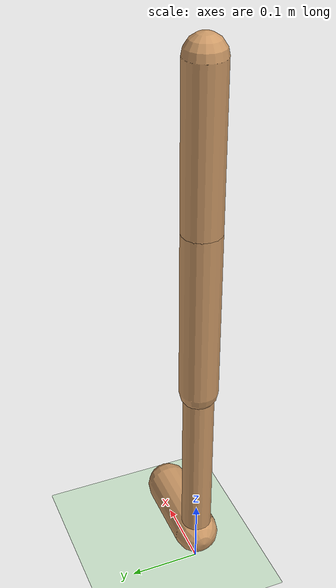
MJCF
<mujoco model="walker2d">
  <compiler angle="degree" inertiafromgeom="true" />
  <default>
    <joint armature="0.01" damping=".1" limited="true" />
    <geom conaffinity="0" condim="3" contype="1" density="1000" friction=".7 .1 .1" rgba="0.8 0.6 .4 1" />
  </default>
  <option integrator="RK4" timestep="0.002" />
  <worldbody>
    <light cutoff="100" diffuse="1 1 1" dir="-0 0 -1.3" directional="true" exponent="1" pos="0 0 1.3" specular=".1 .1 .1" />
    <geom conaffinity="1" condim="3" name="floor" pos="0 0 0" rgba="0.8 0.9 0.8 1" size="40 40 40" type="plane" material="MatPlane" />
    <body name="torso" pos="0 0 0.665">
      <camera name="track" mode="trackcom" pos="0 -3 -0.25" xyaxes="1 0 0 0 0 1" />
      <joint armature="0" axis="1 0 0" damping="0" limited="false" name="rootx" pos="0 0 -0.665" stiffness="0" type="slide" />
      <joint armature="0" axis="0 0 1" damping="0" limited="false" name="rootz" pos="0 0 -0.665" ref="0.665" stiffness="0" type="slide" />
      <joint armature="0" axis="0 1 0" damping="0" limited="false" name="rooty" pos="0 0 0" stiffness="0" type="hinge" />
      <geom friction="0.9" name="torso_geom" size="0.0266 0.1064" type="capsule" />
      <body name="thigh" pos="0 0 -0.1064">
        <joint axis="0 -1 0" name="thigh_joint" pos="0 0 0" range="-150 0" type="hinge" />
        <geom friction="0.9" pos="0 0 -0.1197" name="thigh_geom" size="0.0266 0.1197" type="capsule" />
        <body name="leg" pos="0 0 -0.3724">
          <joint axis="0 -1 0" name="leg_joint" pos="0 0 0.133" range="-150 0" type="hinge" />
          <geom friction="0.9" name="leg_geom" size="0.02128 0.133" type="capsule" />
          <body name="foot" pos="0.1064 0 -0.1862">
            <joint axis="0 -1 0" name="foot_joint" pos="-0.1064 0 0.0532" range="-45 45" type="hinge" />
            <geom friction="1.9" pos="-0.0532 0 0.0532" quat="0.70710678118654757 0 -0.70710678118654746 0" name="foot_geom" size="0.03192 0.0532" type="capsule" />
          </body>
        </body>
      </body>

      <body name="thigh_left" pos="0 0 -0.1064">
        <joint axis="0 -1 0" name="thigh_left_joint" pos="0 0 0" range="-150 0" type="hinge" />
        <geom friction="0.9" name="thigh_left_geom" rgba=".7 .3 .6 1" size="0.0266 0.1197" pos="0 0 -0.1197" type="capsule" />
        <body name="leg_left" pos="0 0 -0.3724">
          <joint axis="0 -1 0" name="leg_left_joint" pos="0 0 0.133" range="-150 0" type="hinge" />
          <geom friction="0.9" name="leg_left_geom" rgba=".7 .3 .6 1" size="0.02128 0.133" type="capsule" />
          <body name="foot_left" pos="0.1064 0 -0.1862">
            <joint axis="0 -1 0" name="foot_left_joint" pos="-0.1064 0 0.0532" range="-45 45" type="hinge" />
            <geom friction="1.9" name="foot_left_geom" rgba=".7 .3 .6 1" size="0.03192 0.0532" pos="-0.0532 0 0.0532" type="capsule" quat="0.70710678118654757 0 -0.70710678118654746 0" />
          </body>
        </body>
      </body>
    </body>
  </worldbody>
  <actuator>

    <motor ctrllimited="true" ctrlrange="-1.0 1.0" gear="8.0102585" joint="thigh_joint" />
    <motor ctrllimited="true" ctrlrange="-1.0 1.0" gear="8.0102585" joint="leg_joint" />
    <motor ctrllimited="true" ctrlrange="-1.0 1.0" gear="8.0102585" joint="foot_joint" />
    <motor ctrllimited="true" ctrlrange="-1.0 1.0" gear="8.0102585" joint="thigh_left_joint" />
    <motor ctrllimited="true" ctrlrange="-1.0 1.0" gear="8.0102585" joint="leg_left_joint" />
    <motor ctrllimited="true" ctrlrange="-1.0 1.0" gear="8.0102585" joint="foot_left_joint" />

  </actuator>
    <asset>
        <texture type="skybox" builtin="gradient" rgb1=".4 .5 .6" rgb2="0 0 0" width="100" height="100" />
        <texture builtin="flat" height="1278" mark="cross" markrgb="1 1 1" name="texgeom" random="0.01" rgb1="0.8 0.6 0.4" rgb2="0.8 0.6 0.4" type="cube" width="127" />
        <texture builtin="checker" height="100" name="texplane" rgb1="0 0 0" rgb2="0.8 0.8 0.8" type="2d" width="100" />
        <material name="MatPlane" reflectance="0.5" shininess="1" specular="1" texrepeat="60 60" texture="texplane" />
        <material name="geom" texture="texgeom" texuniform="true" />
    </asset>
</mujoco>
